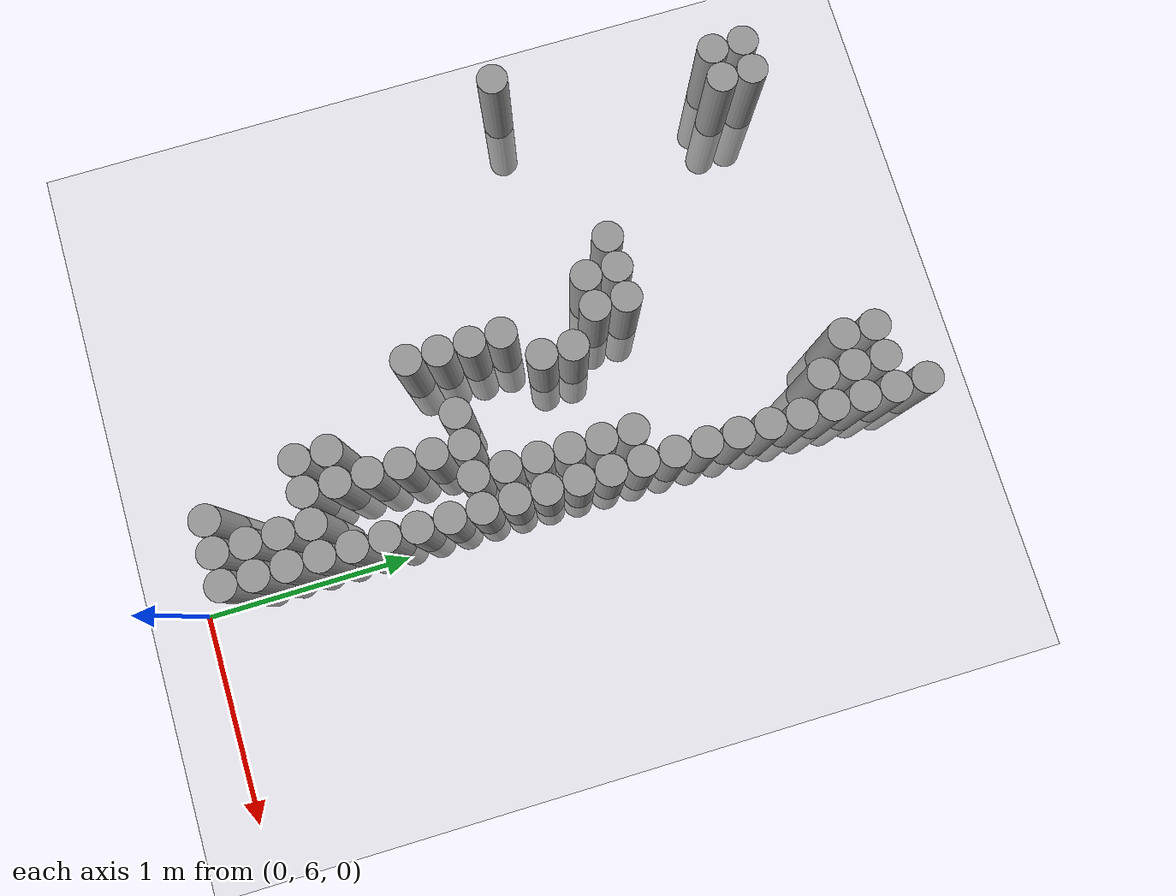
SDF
<sdf version="1.6">
 <world name="default">
  <model name="ground_plane">
   <static>1</static>
   <static>1</static>
   <link name="link">
    <collision name="collision">
     <geometry><plane><normal>0 0 1</normal><size>100 100</size></plane></geometry>
     <surface><friction><ode><mu>100</mu><mu2>50</mu2></ode></friction></surface>
    </collision>
    <visual name="visual">
     <cast_shadows>0</cast_shadows>
     <geometry><plane><normal>0 0 1</normal><size>100 100</size></plane></geometry>
     <material>
      <script><uri>file://media/materials/scripts/gazebo.material</uri><name>Gazebo/Grey</name></script>
     </material>
    </visual>
   </link>
  </model>
  <model name="unit_cylinder_182">
   <static>1</static>
   <pose>-2.025000 8.025000 0.000000 0.000000 0.000000 0.000000</pose>
   <link name="link">
    <inertial>
     <mass>1</mass>
     <inertia><ixx>0.145833</ixx><ixy>0</ixy><ixz>0</ixz><iyy>0.145833</iyy><iyz>0</iyz><izz>0.125</izz></inertia>
    </inertial>
    <collision name="collision">
     <geometry><cylinder><radius>0.075000</radius><length>1</length></cylinder></geometry>
    </collision>
    <visual name="visual">
     <geometry><cylinder><radius>0.075000</radius><length>1</length></cylinder></geometry>
     <material>
      <script><name>Gazebo/Grey</name><uri>file://media/materials/scripts/gazebo.material</uri></script>
     </material>
    </visual>
   </link>
  </model>
  <model name="unit_cylinder_183">
   <static>1</static>
   <pose>-1.875000 9.075000 0.000000 0.000000 0.000000 0.000000</pose>
   <link name="link">
    <inertial>
     <mass>1</mass>
     <inertia><ixx>0.145833</ixx><ixy>0</ixy><ixz>0</ixz><iyy>0.145833</iyy><iyz>0</iyz><izz>0.125</izz></inertia>
    </inertial>
    <collision name="collision">
     <geometry><cylinder><radius>0.075000</radius><length>1</length></cylinder></geometry>
    </collision>
    <visual name="visual">
     <geometry><cylinder><radius>0.075000</radius><length>1</length></cylinder></geometry>
     <material>
      <script><name>Gazebo/Grey</name><uri>file://media/materials/scripts/gazebo.material</uri></script>
     </material>
    </visual>
   </link>
  </model>
  <model name="unit_cylinder_184">
   <static>1</static>
   <pose>-1.875000 9.225000 0.000000 0.000000 0.000000 0.000000</pose>
   <link name="link">
    <inertial>
     <mass>1</mass>
     <inertia><ixx>0.145833</ixx><ixy>0</ixy><ixz>0</ixz><iyy>0.145833</iyy><iyz>0</iyz><izz>0.125</izz></inertia>
    </inertial>
    <collision name="collision">
     <geometry><cylinder><radius>0.075000</radius><length>1</length></cylinder></geometry>
    </collision>
    <visual name="visual">
     <geometry><cylinder><radius>0.075000</radius><length>1</length></cylinder></geometry>
     <material>
      <script><name>Gazebo/Grey</name><uri>file://media/materials/scripts/gazebo.material</uri></script>
     </material>
    </visual>
   </link>
  </model>
  <model name="unit_cylinder_185">
   <static>1</static>
   <pose>-1.725000 9.075000 0.000000 0.000000 0.000000 0.000000</pose>
   <link name="link">
    <inertial>
     <mass>1</mass>
     <inertia><ixx>0.145833</ixx><ixy>0</ixy><ixz>0</ixz><iyy>0.145833</iyy><iyz>0</iyz><izz>0.125</izz></inertia>
    </inertial>
    <collision name="collision">
     <geometry><cylinder><radius>0.075000</radius><length>1</length></cylinder></geometry>
    </collision>
    <visual name="visual">
     <geometry><cylinder><radius>0.075000</radius><length>1</length></cylinder></geometry>
     <material>
      <script><name>Gazebo/Grey</name><uri>file://media/materials/scripts/gazebo.material</uri></script>
     </material>
    </visual>
   </link>
  </model>
  <model name="unit_cylinder_186">
   <static>1</static>
   <pose>-1.725000 9.225000 0.000000 0.000000 0.000000 0.000000</pose>
   <link name="link">
    <inertial>
     <mass>1</mass>
     <inertia><ixx>0.145833</ixx><ixy>0</ixy><ixz>0</ixz><iyy>0.145833</iyy><iyz>0</iyz><izz>0.125</izz></inertia>
    </inertial>
    <collision name="collision">
     <geometry><cylinder><radius>0.075000</radius><length>1</length></cylinder></geometry>
    </collision>
    <visual name="visual">
     <geometry><cylinder><radius>0.075000</radius><length>1</length></cylinder></geometry>
     <material>
      <script><name>Gazebo/Grey</name><uri>file://media/materials/scripts/gazebo.material</uri></script>
     </material>
    </visual>
   </link>
  </model>
  <model name="unit_cylinder_188">
   <static>1</static>
   <pose>-1.125000 8.325000 0.000000 0.000000 0.000000 0.000000</pose>
   <link name="link">
    <inertial>
     <mass>1</mass>
     <inertia><ixx>0.145833</ixx><ixy>0</ixy><ixz>0</ixz><iyy>0.145833</iyy><iyz>0</iyz><izz>0.125</izz></inertia>
    </inertial>
    <collision name="collision">
     <geometry><cylinder><radius>0.075000</radius><length>1</length></cylinder></geometry>
    </collision>
    <visual name="visual">
     <geometry><cylinder><radius>0.075000</radius><length>1</length></cylinder></geometry>
     <material>
      <script><name>Gazebo/Grey</name><uri>file://media/materials/scripts/gazebo.material</uri></script>
     </material>
    </visual>
   </link>
  </model>
  <model name="unit_cylinder_189">
   <static>1</static>
   <pose>-0.975000 8.175000 0.000000 0.000000 0.000000 0.000000</pose>
   <link name="link">
    <inertial>
     <mass>1</mass>
     <inertia><ixx>0.145833</ixx><ixy>0</ixy><ixz>0</ixz><iyy>0.145833</iyy><iyz>0</iyz><izz>0.125</izz></inertia>
    </inertial>
    <collision name="collision">
     <geometry><cylinder><radius>0.075000</radius><length>1</length></cylinder></geometry>
    </collision>
    <visual name="visual">
     <geometry><cylinder><radius>0.075000</radius><length>1</length></cylinder></geometry>
     <material>
      <script><name>Gazebo/Grey</name><uri>file://media/materials/scripts/gazebo.material</uri></script>
     </material>
    </visual>
   </link>
  </model>
  <model name="unit_cylinder_190">
   <static>1</static>
   <pose>-0.975000 8.325000 0.000000 0.000000 0.000000 0.000000</pose>
   <link name="link">
    <inertial>
     <mass>1</mass>
     <inertia><ixx>0.145833</ixx><ixy>0</ixy><ixz>0</ixz><iyy>0.145833</iyy><iyz>0</iyz><izz>0.125</izz></inertia>
    </inertial>
    <collision name="collision">
     <geometry><cylinder><radius>0.075000</radius><length>1</length></cylinder></geometry>
    </collision>
    <visual name="visual">
     <geometry><cylinder><radius>0.075000</radius><length>1</length></cylinder></geometry>
     <material>
      <script><name>Gazebo/Grey</name><uri>file://media/materials/scripts/gazebo.material</uri></script>
     </material>
    </visual>
   </link>
  </model>
  <model name="unit_cylinder_191">
   <static>1</static>
   <pose>-0.825000 7.275000 0.000000 0.000000 0.000000 0.000000</pose>
   <link name="link">
    <inertial>
     <mass>1</mass>
     <inertia><ixx>0.145833</ixx><ixy>0</ixy><ixz>0</ixz><iyy>0.145833</iyy><iyz>0</iyz><izz>0.125</izz></inertia>
    </inertial>
    <collision name="collision">
     <geometry><cylinder><radius>0.075000</radius><length>1</length></cylinder></geometry>
    </collision>
    <visual name="visual">
     <geometry><cylinder><radius>0.075000</radius><length>1</length></cylinder></geometry>
     <material>
      <script><name>Gazebo/Grey</name><uri>file://media/materials/scripts/gazebo.material</uri></script>
     </material>
    </visual>
   </link>
  </model>
  <model name="unit_cylinder_192">
   <static>1</static>
   <pose>-0.825000 7.425000 0.000000 0.000000 0.000000 0.000000</pose>
   <link name="link">
    <inertial>
     <mass>1</mass>
     <inertia><ixx>0.145833</ixx><ixy>0</ixy><ixz>0</ixz><iyy>0.145833</iyy><iyz>0</iyz><izz>0.125</izz></inertia>
    </inertial>
    <collision name="collision">
     <geometry><cylinder><radius>0.075000</radius><length>1</length></cylinder></geometry>
    </collision>
    <visual name="visual">
     <geometry><cylinder><radius>0.075000</radius><length>1</length></cylinder></geometry>
     <material>
      <script><name>Gazebo/Grey</name><uri>file://media/materials/scripts/gazebo.material</uri></script>
     </material>
    </visual>
   </link>
  </model>
  <model name="unit_cylinder_193">
   <static>1</static>
   <pose>-0.825000 7.575000 0.000000 0.000000 0.000000 0.000000</pose>
   <link name="link">
    <inertial>
     <mass>1</mass>
     <inertia><ixx>0.145833</ixx><ixy>0</ixy><ixz>0</ixz><iyy>0.145833</iyy><iyz>0</iyz><izz>0.125</izz></inertia>
    </inertial>
    <collision name="collision">
     <geometry><cylinder><radius>0.075000</radius><length>1</length></cylinder></geometry>
    </collision>
    <visual name="visual">
     <geometry><cylinder><radius>0.075000</radius><length>1</length></cylinder></geometry>
     <material>
      <script><name>Gazebo/Grey</name><uri>file://media/materials/scripts/gazebo.material</uri></script>
     </material>
    </visual>
   </link>
  </model>
  <model name="unit_cylinder_194">
   <static>1</static>
   <pose>-0.825000 7.725000 0.000000 0.000000 0.000000 0.000000</pose>
   <link name="link">
    <inertial>
     <mass>1</mass>
     <inertia><ixx>0.145833</ixx><ixy>0</ixy><ixz>0</ixz><iyy>0.145833</iyy><iyz>0</iyz><izz>0.125</izz></inertia>
    </inertial>
    <collision name="collision">
     <geometry><cylinder><radius>0.075000</radius><length>1</length></cylinder></geometry>
    </collision>
    <visual name="visual">
     <geometry><cylinder><radius>0.075000</radius><length>1</length></cylinder></geometry>
     <material>
      <script><name>Gazebo/Grey</name><uri>file://media/materials/scripts/gazebo.material</uri></script>
     </material>
    </visual>
   </link>
  </model>
  <model name="unit_cylinder_195">
   <static>1</static>
   <pose>-0.825000 8.175000 0.000000 0.000000 0.000000 0.000000</pose>
   <link name="link">
    <inertial>
     <mass>1</mass>
     <inertia><ixx>0.145833</ixx><ixy>0</ixy><ixz>0</ixz><iyy>0.145833</iyy><iyz>0</iyz><izz>0.125</izz></inertia>
    </inertial>
    <collision name="collision">
     <geometry><cylinder><radius>0.075000</radius><length>1</length></cylinder></geometry>
    </collision>
    <visual name="visual">
     <geometry><cylinder><radius>0.075000</radius><length>1</length></cylinder></geometry>
     <material>
      <script><name>Gazebo/Grey</name><uri>file://media/materials/scripts/gazebo.material</uri></script>
     </material>
    </visual>
   </link>
  </model>
  <model name="unit_cylinder_196">
   <static>1</static>
   <pose>-0.825000 8.325000 0.000000 0.000000 0.000000 0.000000</pose>
   <link name="link">
    <inertial>
     <mass>1</mass>
     <inertia><ixx>0.145833</ixx><ixy>0</ixy><ixz>0</ixz><iyy>0.145833</iyy><iyz>0</iyz><izz>0.125</izz></inertia>
    </inertial>
    <collision name="collision">
     <geometry><cylinder><radius>0.075000</radius><length>1</length></cylinder></geometry>
    </collision>
    <visual name="visual">
     <geometry><cylinder><radius>0.075000</radius><length>1</length></cylinder></geometry>
     <material>
      <script><name>Gazebo/Grey</name><uri>file://media/materials/scripts/gazebo.material</uri></script>
     </material>
    </visual>
   </link>
  </model>
  <model name="unit_cylinder_197">
   <static>1</static>
   <pose>-0.675000 7.875000 0.000000 0.000000 0.000000 0.000000</pose>
   <link name="link">
    <inertial>
     <mass>1</mass>
     <inertia><ixx>0.145833</ixx><ixy>0</ixy><ixz>0</ixz><iyy>0.145833</iyy><iyz>0</iyz><izz>0.125</izz></inertia>
    </inertial>
    <collision name="collision">
     <geometry><cylinder><radius>0.075000</radius><length>1</length></cylinder></geometry>
    </collision>
    <visual name="visual">
     <geometry><cylinder><radius>0.075000</radius><length>1</length></cylinder></geometry>
     <material>
      <script><name>Gazebo/Grey</name><uri>file://media/materials/scripts/gazebo.material</uri></script>
     </material>
    </visual>
   </link>
  </model>
  <model name="unit_cylinder_198">
   <static>1</static>
   <pose>-0.675000 8.025000 0.000000 0.000000 0.000000 0.000000</pose>
   <link name="link">
    <inertial>
     <mass>1</mass>
     <inertia><ixx>0.145833</ixx><ixy>0</ixy><ixz>0</ixz><iyy>0.145833</iyy><iyz>0</iyz><izz>0.125</izz></inertia>
    </inertial>
    <collision name="collision">
     <geometry><cylinder><radius>0.075000</radius><length>1</length></cylinder></geometry>
    </collision>
    <visual name="visual">
     <geometry><cylinder><radius>0.075000</radius><length>1</length></cylinder></geometry>
     <material>
      <script><name>Gazebo/Grey</name><uri>file://media/materials/scripts/gazebo.material</uri></script>
     </material>
    </visual>
   </link>
  </model>
  <model name="unit_cylinder_199">
   <static>1</static>
   <pose>-0.525000 6.675000 0.000000 0.000000 0.000000 0.000000</pose>
   <link name="link">
    <inertial>
     <mass>1</mass>
     <inertia><ixx>0.145833</ixx><ixy>0</ixy><ixz>0</ixz><iyy>0.145833</iyy><iyz>0</iyz><izz>0.125</izz></inertia>
    </inertial>
    <collision name="collision">
     <geometry><cylinder><radius>0.075000</radius><length>1</length></cylinder></geometry>
    </collision>
    <visual name="visual">
     <geometry><cylinder><radius>0.075000</radius><length>1</length></cylinder></geometry>
     <material>
      <script><name>Gazebo/Grey</name><uri>file://media/materials/scripts/gazebo.material</uri></script>
     </material>
    </visual>
   </link>
  </model>
  <model name="unit_cylinder_200">
   <static>1</static>
   <pose>-0.525000 6.825000 0.000000 0.000000 0.000000 0.000000</pose>
   <link name="link">
    <inertial>
     <mass>1</mass>
     <inertia><ixx>0.145833</ixx><ixy>0</ixy><ixz>0</ixz><iyy>0.145833</iyy><iyz>0</iyz><izz>0.125</izz></inertia>
    </inertial>
    <collision name="collision">
     <geometry><cylinder><radius>0.075000</radius><length>1</length></cylinder></geometry>
    </collision>
    <visual name="visual">
     <geometry><cylinder><radius>0.075000</radius><length>1</length></cylinder></geometry>
     <material>
      <script><name>Gazebo/Grey</name><uri>file://media/materials/scripts/gazebo.material</uri></script>
     </material>
    </visual>
   </link>
  </model>
  <model name="unit_cylinder_201">
   <static>1</static>
   <pose>-0.525000 7.425000 0.000000 0.000000 0.000000 0.000000</pose>
   <link name="link">
    <inertial>
     <mass>1</mass>
     <inertia><ixx>0.145833</ixx><ixy>0</ixy><ixz>0</ixz><iyy>0.145833</iyy><iyz>0</iyz><izz>0.125</izz></inertia>
    </inertial>
    <collision name="collision">
     <geometry><cylinder><radius>0.075000</radius><length>1</length></cylinder></geometry>
    </collision>
    <visual name="visual">
     <geometry><cylinder><radius>0.075000</radius><length>1</length></cylinder></geometry>
     <material>
      <script><name>Gazebo/Grey</name><uri>file://media/materials/scripts/gazebo.material</uri></script>
     </material>
    </visual>
   </link>
  </model>
  <model name="unit_cylinder_202">
   <static>1</static>
   <pose>-0.375000 6.225000 0.000000 0.000000 0.000000 0.000000</pose>
   <link name="link">
    <inertial>
     <mass>1</mass>
     <inertia><ixx>0.145833</ixx><ixy>0</ixy><ixz>0</ixz><iyy>0.145833</iyy><iyz>0</iyz><izz>0.125</izz></inertia>
    </inertial>
    <collision name="collision">
     <geometry><cylinder><radius>0.075000</radius><length>1</length></cylinder></geometry>
    </collision>
    <visual name="visual">
     <geometry><cylinder><radius>0.075000</radius><length>1</length></cylinder></geometry>
     <material>
      <script><name>Gazebo/Grey</name><uri>file://media/materials/scripts/gazebo.material</uri></script>
     </material>
    </visual>
   </link>
  </model>
  <model name="unit_cylinder_203">
   <static>1</static>
   <pose>-0.375000 6.675000 0.000000 0.000000 0.000000 0.000000</pose>
   <link name="link">
    <inertial>
     <mass>1</mass>
     <inertia><ixx>0.145833</ixx><ixy>0</ixy><ixz>0</ixz><iyy>0.145833</iyy><iyz>0</iyz><izz>0.125</izz></inertia>
    </inertial>
    <collision name="collision">
     <geometry><cylinder><radius>0.075000</radius><length>1</length></cylinder></geometry>
    </collision>
    <visual name="visual">
     <geometry><cylinder><radius>0.075000</radius><length>1</length></cylinder></geometry>
     <material>
      <script><name>Gazebo/Grey</name><uri>file://media/materials/scripts/gazebo.material</uri></script>
     </material>
    </visual>
   </link>
  </model>
  <model name="unit_cylinder_204">
   <static>1</static>
   <pose>-0.375000 6.825000 0.000000 0.000000 0.000000 0.000000</pose>
   <link name="link">
    <inertial>
     <mass>1</mass>
     <inertia><ixx>0.145833</ixx><ixy>0</ixy><ixz>0</ixz><iyy>0.145833</iyy><iyz>0</iyz><izz>0.125</izz></inertia>
    </inertial>
    <collision name="collision">
     <geometry><cylinder><radius>0.075000</radius><length>1</length></cylinder></geometry>
    </collision>
    <visual name="visual">
     <geometry><cylinder><radius>0.075000</radius><length>1</length></cylinder></geometry>
     <material>
      <script><name>Gazebo/Grey</name><uri>file://media/materials/scripts/gazebo.material</uri></script>
     </material>
    </visual>
   </link>
  </model>
  <model name="unit_cylinder_205">
   <static>1</static>
   <pose>-0.375000 6.975000 0.000000 0.000000 0.000000 0.000000</pose>
   <link name="link">
    <inertial>
     <mass>1</mass>
     <inertia><ixx>0.145833</ixx><ixy>0</ixy><ixz>0</ixz><iyy>0.145833</iyy><iyz>0</iyz><izz>0.125</izz></inertia>
    </inertial>
    <collision name="collision">
     <geometry><cylinder><radius>0.075000</radius><length>1</length></cylinder></geometry>
    </collision>
    <visual name="visual">
     <geometry><cylinder><radius>0.075000</radius><length>1</length></cylinder></geometry>
     <material>
      <script><name>Gazebo/Grey</name><uri>file://media/materials/scripts/gazebo.material</uri></script>
     </material>
    </visual>
   </link>
  </model>
  <model name="unit_cylinder_206">
   <static>1</static>
   <pose>-0.375000 7.125000 0.000000 0.000000 0.000000 0.000000</pose>
   <link name="link">
    <inertial>
     <mass>1</mass>
     <inertia><ixx>0.145833</ixx><ixy>0</ixy><ixz>0</ixz><iyy>0.145833</iyy><iyz>0</iyz><izz>0.125</izz></inertia>
    </inertial>
    <collision name="collision">
     <geometry><cylinder><radius>0.075000</radius><length>1</length></cylinder></geometry>
    </collision>
    <visual name="visual">
     <geometry><cylinder><radius>0.075000</radius><length>1</length></cylinder></geometry>
     <material>
      <script><name>Gazebo/Grey</name><uri>file://media/materials/scripts/gazebo.material</uri></script>
     </material>
    </visual>
   </link>
  </model>
  <model name="unit_cylinder_207">
   <static>1</static>
   <pose>-0.375000 7.275000 0.000000 0.000000 0.000000 0.000000</pose>
   <link name="link">
    <inertial>
     <mass>1</mass>
     <inertia><ixx>0.145833</ixx><ixy>0</ixy><ixz>0</ixz><iyy>0.145833</iyy><iyz>0</iyz><izz>0.125</izz></inertia>
    </inertial>
    <collision name="collision">
     <geometry><cylinder><radius>0.075000</radius><length>1</length></cylinder></geometry>
    </collision>
    <visual name="visual">
     <geometry><cylinder><radius>0.075000</radius><length>1</length></cylinder></geometry>
     <material>
      <script><name>Gazebo/Grey</name><uri>file://media/materials/scripts/gazebo.material</uri></script>
     </material>
    </visual>
   </link>
  </model>
  <model name="unit_cylinder_208">
   <static>1</static>
   <pose>-0.375000 7.425000 0.000000 0.000000 0.000000 0.000000</pose>
   <link name="link">
    <inertial>
     <mass>1</mass>
     <inertia><ixx>0.145833</ixx><ixy>0</ixy><ixz>0</ixz><iyy>0.145833</iyy><iyz>0</iyz><izz>0.125</izz></inertia>
    </inertial>
    <collision name="collision">
     <geometry><cylinder><radius>0.075000</radius><length>1</length></cylinder></geometry>
    </collision>
    <visual name="visual">
     <geometry><cylinder><radius>0.075000</radius><length>1</length></cylinder></geometry>
     <material>
      <script><name>Gazebo/Grey</name><uri>file://media/materials/scripts/gazebo.material</uri></script>
     </material>
    </visual>
   </link>
  </model>
  <model name="unit_cylinder_209">
   <static>1</static>
   <pose>-0.375000 9.225000 0.000000 0.000000 0.000000 0.000000</pose>
   <link name="link">
    <inertial>
     <mass>1</mass>
     <inertia><ixx>0.145833</ixx><ixy>0</ixy><ixz>0</ixz><iyy>0.145833</iyy><iyz>0</iyz><izz>0.125</izz></inertia>
    </inertial>
    <collision name="collision">
     <geometry><cylinder><radius>0.075000</radius><length>1</length></cylinder></geometry>
    </collision>
    <visual name="visual">
     <geometry><cylinder><radius>0.075000</radius><length>1</length></cylinder></geometry>
     <material>
      <script><name>Gazebo/Grey</name><uri>file://media/materials/scripts/gazebo.material</uri></script>
     </material>
    </visual>
   </link>
  </model>
  <model name="unit_cylinder_210">
   <static>1</static>
   <pose>-0.375000 9.375000 0.000000 0.000000 0.000000 0.000000</pose>
   <link name="link">
    <inertial>
     <mass>1</mass>
     <inertia><ixx>0.145833</ixx><ixy>0</ixy><ixz>0</ixz><iyy>0.145833</iyy><iyz>0</iyz><izz>0.125</izz></inertia>
    </inertial>
    <collision name="collision">
     <geometry><cylinder><radius>0.075000</radius><length>1</length></cylinder></geometry>
    </collision>
    <visual name="visual">
     <geometry><cylinder><radius>0.075000</radius><length>1</length></cylinder></geometry>
     <material>
      <script><name>Gazebo/Grey</name><uri>file://media/materials/scripts/gazebo.material</uri></script>
     </material>
    </visual>
   </link>
  </model>
  <model name="unit_cylinder_213">
   <static>1</static>
   <pose>-0.225000 6.225000 0.000000 0.000000 0.000000 0.000000</pose>
   <link name="link">
    <inertial>
     <mass>1</mass>
     <inertia><ixx>0.145833</ixx><ixy>0</ixy><ixz>0</ixz><iyy>0.145833</iyy><iyz>0</iyz><izz>0.125</izz></inertia>
    </inertial>
    <collision name="collision">
     <geometry><cylinder><radius>0.075000</radius><length>1</length></cylinder></geometry>
    </collision>
    <visual name="visual">
     <geometry><cylinder><radius>0.075000</radius><length>1</length></cylinder></geometry>
     <material>
      <script><name>Gazebo/Grey</name><uri>file://media/materials/scripts/gazebo.material</uri></script>
     </material>
    </visual>
   </link>
  </model>
  <model name="unit_cylinder_214">
   <static>1</static>
   <pose>-0.225000 6.375000 0.000000 0.000000 0.000000 0.000000</pose>
   <link name="link">
    <inertial>
     <mass>1</mass>
     <inertia><ixx>0.145833</ixx><ixy>0</ixy><ixz>0</ixz><iyy>0.145833</iyy><iyz>0</iyz><izz>0.125</izz></inertia>
    </inertial>
    <collision name="collision">
     <geometry><cylinder><radius>0.075000</radius><length>1</length></cylinder></geometry>
    </collision>
    <visual name="visual">
     <geometry><cylinder><radius>0.075000</radius><length>1</length></cylinder></geometry>
     <material>
      <script><name>Gazebo/Grey</name><uri>file://media/materials/scripts/gazebo.material</uri></script>
     </material>
    </visual>
   </link>
  </model>
  <model name="unit_cylinder_215">
   <static>1</static>
   <pose>-0.225000 6.525000 0.000000 0.000000 0.000000 0.000000</pose>
   <link name="link">
    <inertial>
     <mass>1</mass>
     <inertia><ixx>0.145833</ixx><ixy>0</ixy><ixz>0</ixz><iyy>0.145833</iyy><iyz>0</iyz><izz>0.125</izz></inertia>
    </inertial>
    <collision name="collision">
     <geometry><cylinder><radius>0.075000</radius><length>1</length></cylinder></geometry>
    </collision>
    <visual name="visual">
     <geometry><cylinder><radius>0.075000</radius><length>1</length></cylinder></geometry>
     <material>
      <script><name>Gazebo/Grey</name><uri>file://media/materials/scripts/gazebo.material</uri></script>
     </material>
    </visual>
   </link>
  </model>
  <model name="unit_cylinder_216">
   <static>1</static>
   <pose>-0.225000 6.675000 0.000000 0.000000 0.000000 0.000000</pose>
   <link name="link">
    <inertial>
     <mass>1</mass>
     <inertia><ixx>0.145833</ixx><ixy>0</ixy><ixz>0</ixz><iyy>0.145833</iyy><iyz>0</iyz><izz>0.125</izz></inertia>
    </inertial>
    <collision name="collision">
     <geometry><cylinder><radius>0.075000</radius><length>1</length></cylinder></geometry>
    </collision>
    <visual name="visual">
     <geometry><cylinder><radius>0.075000</radius><length>1</length></cylinder></geometry>
     <material>
      <script><name>Gazebo/Grey</name><uri>file://media/materials/scripts/gazebo.material</uri></script>
     </material>
    </visual>
   </link>
  </model>
  <model name="unit_cylinder_217">
   <static>1</static>
   <pose>-0.225000 7.425000 0.000000 0.000000 0.000000 0.000000</pose>
   <link name="link">
    <inertial>
     <mass>1</mass>
     <inertia><ixx>0.145833</ixx><ixy>0</ixy><ixz>0</ixz><iyy>0.145833</iyy><iyz>0</iyz><izz>0.125</izz></inertia>
    </inertial>
    <collision name="collision">
     <geometry><cylinder><radius>0.075000</radius><length>1</length></cylinder></geometry>
    </collision>
    <visual name="visual">
     <geometry><cylinder><radius>0.075000</radius><length>1</length></cylinder></geometry>
     <material>
      <script><name>Gazebo/Grey</name><uri>file://media/materials/scripts/gazebo.material</uri></script>
     </material>
    </visual>
   </link>
  </model>
  <model name="unit_cylinder_218">
   <static>1</static>
   <pose>-0.225000 7.575000 0.000000 0.000000 0.000000 0.000000</pose>
   <link name="link">
    <inertial>
     <mass>1</mass>
     <inertia><ixx>0.145833</ixx><ixy>0</ixy><ixz>0</ixz><iyy>0.145833</iyy><iyz>0</iyz><izz>0.125</izz></inertia>
    </inertial>
    <collision name="collision">
     <geometry><cylinder><radius>0.075000</radius><length>1</length></cylinder></geometry>
    </collision>
    <visual name="visual">
     <geometry><cylinder><radius>0.075000</radius><length>1</length></cylinder></geometry>
     <material>
      <script><name>Gazebo/Grey</name><uri>file://media/materials/scripts/gazebo.material</uri></script>
     </material>
    </visual>
   </link>
  </model>
  <model name="unit_cylinder_219">
   <static>1</static>
   <pose>-0.225000 7.725000 0.000000 0.000000 0.000000 0.000000</pose>
   <link name="link">
    <inertial>
     <mass>1</mass>
     <inertia><ixx>0.145833</ixx><ixy>0</ixy><ixz>0</ixz><iyy>0.145833</iyy><iyz>0</iyz><izz>0.125</izz></inertia>
    </inertial>
    <collision name="collision">
     <geometry><cylinder><radius>0.075000</radius><length>1</length></cylinder></geometry>
    </collision>
    <visual name="visual">
     <geometry><cylinder><radius>0.075000</radius><length>1</length></cylinder></geometry>
     <material>
      <script><name>Gazebo/Grey</name><uri>file://media/materials/scripts/gazebo.material</uri></script>
     </material>
    </visual>
   </link>
  </model>
  <model name="unit_cylinder_220">
   <static>1</static>
   <pose>-0.225000 7.875000 0.000000 0.000000 0.000000 0.000000</pose>
   <link name="link">
    <inertial>
     <mass>1</mass>
     <inertia><ixx>0.145833</ixx><ixy>0</ixy><ixz>0</ixz><iyy>0.145833</iyy><iyz>0</iyz><izz>0.125</izz></inertia>
    </inertial>
    <collision name="collision">
     <geometry><cylinder><radius>0.075000</radius><length>1</length></cylinder></geometry>
    </collision>
    <visual name="visual">
     <geometry><cylinder><radius>0.075000</radius><length>1</length></cylinder></geometry>
     <material>
      <script><name>Gazebo/Grey</name><uri>file://media/materials/scripts/gazebo.material</uri></script>
     </material>
    </visual>
   </link>
  </model>
  <model name="unit_cylinder_221">
   <static>1</static>
   <pose>-0.225000 8.025000 0.000000 0.000000 0.000000 0.000000</pose>
   <link name="link">
    <inertial>
     <mass>1</mass>
     <inertia><ixx>0.145833</ixx><ixy>0</ixy><ixz>0</ixz><iyy>0.145833</iyy><iyz>0</iyz><izz>0.125</izz></inertia>
    </inertial>
    <collision name="collision">
     <geometry><cylinder><radius>0.075000</radius><length>1</length></cylinder></geometry>
    </collision>
    <visual name="visual">
     <geometry><cylinder><radius>0.075000</radius><length>1</length></cylinder></geometry>
     <material>
      <script><name>Gazebo/Grey</name><uri>file://media/materials/scripts/gazebo.material</uri></script>
     </material>
    </visual>
   </link>
  </model>
  <model name="unit_cylinder_222">
   <static>1</static>
   <pose>-0.225000 8.175000 0.000000 0.000000 0.000000 0.000000</pose>
   <link name="link">
    <inertial>
     <mass>1</mass>
     <inertia><ixx>0.145833</ixx><ixy>0</ixy><ixz>0</ixz><iyy>0.145833</iyy><iyz>0</iyz><izz>0.125</izz></inertia>
    </inertial>
    <collision name="collision">
     <geometry><cylinder><radius>0.075000</radius><length>1</length></cylinder></geometry>
    </collision>
    <visual name="visual">
     <geometry><cylinder><radius>0.075000</radius><length>1</length></cylinder></geometry>
     <material>
      <script><name>Gazebo/Grey</name><uri>file://media/materials/scripts/gazebo.material</uri></script>
     </material>
    </visual>
   </link>
  </model>
  <model name="unit_cylinder_223">
   <static>1</static>
   <pose>-0.225000 9.075000 0.000000 0.000000 0.000000 0.000000</pose>
   <link name="link">
    <inertial>
     <mass>1</mass>
     <inertia><ixx>0.145833</ixx><ixy>0</ixy><ixz>0</ixz><iyy>0.145833</iyy><iyz>0</iyz><izz>0.125</izz></inertia>
    </inertial>
    <collision name="collision">
     <geometry><cylinder><radius>0.075000</radius><length>1</length></cylinder></geometry>
    </collision>
    <visual name="visual">
     <geometry><cylinder><radius>0.075000</radius><length>1</length></cylinder></geometry>
     <material>
      <script><name>Gazebo/Grey</name><uri>file://media/materials/scripts/gazebo.material</uri></script>
     </material>
    </visual>
   </link>
  </model>
  <model name="unit_cylinder_224">
   <static>1</static>
   <pose>-0.225000 9.225000 0.000000 0.000000 0.000000 0.000000</pose>
   <link name="link">
    <inertial>
     <mass>1</mass>
     <inertia><ixx>0.145833</ixx><ixy>0</ixy><ixz>0</ixz><iyy>0.145833</iyy><iyz>0</iyz><izz>0.125</izz></inertia>
    </inertial>
    <collision name="collision">
     <geometry><cylinder><radius>0.075000</radius><length>1</length></cylinder></geometry>
    </collision>
    <visual name="visual">
     <geometry><cylinder><radius>0.075000</radius><length>1</length></cylinder></geometry>
     <material>
      <script><name>Gazebo/Grey</name><uri>file://media/materials/scripts/gazebo.material</uri></script>
     </material>
    </visual>
   </link>
  </model>
  <model name="unit_cylinder_225">
   <static>1</static>
   <pose>-0.225000 9.375000 0.000000 0.000000 0.000000 0.000000</pose>
   <link name="link">
    <inertial>
     <mass>1</mass>
     <inertia><ixx>0.145833</ixx><ixy>0</ixy><ixz>0</ixz><iyy>0.145833</iyy><iyz>0</iyz><izz>0.125</izz></inertia>
    </inertial>
    <collision name="collision">
     <geometry><cylinder><radius>0.075000</radius><length>1</length></cylinder></geometry>
    </collision>
    <visual name="visual">
     <geometry><cylinder><radius>0.075000</radius><length>1</length></cylinder></geometry>
     <material>
      <script><name>Gazebo/Grey</name><uri>file://media/materials/scripts/gazebo.material</uri></script>
     </material>
    </visual>
   </link>
  </model>
  <model name="unit_cylinder_233">
   <static>1</static>
   <pose>-0.075000 6.225000 0.000000 0.000000 0.000000 0.000000</pose>
   <link name="link">
    <inertial>
     <mass>1</mass>
     <inertia><ixx>0.145833</ixx><ixy>0</ixy><ixz>0</ixz><iyy>0.145833</iyy><iyz>0</iyz><izz>0.125</izz></inertia>
    </inertial>
    <collision name="collision">
     <geometry><cylinder><radius>0.075000</radius><length>1</length></cylinder></geometry>
    </collision>
    <visual name="visual">
     <geometry><cylinder><radius>0.075000</radius><length>1</length></cylinder></geometry>
     <material>
      <script><name>Gazebo/Grey</name><uri>file://media/materials/scripts/gazebo.material</uri></script>
     </material>
    </visual>
   </link>
  </model>
  <model name="unit_cylinder_234">
   <static>1</static>
   <pose>-0.075000 6.375000 0.000000 0.000000 0.000000 0.000000</pose>
   <link name="link">
    <inertial>
     <mass>1</mass>
     <inertia><ixx>0.145833</ixx><ixy>0</ixy><ixz>0</ixz><iyy>0.145833</iyy><iyz>0</iyz><izz>0.125</izz></inertia>
    </inertial>
    <collision name="collision">
     <geometry><cylinder><radius>0.075000</radius><length>1</length></cylinder></geometry>
    </collision>
    <visual name="visual">
     <geometry><cylinder><radius>0.075000</radius><length>1</length></cylinder></geometry>
     <material>
      <script><name>Gazebo/Grey</name><uri>file://media/materials/scripts/gazebo.material</uri></script>
     </material>
    </visual>
   </link>
  </model>
  <model name="unit_cylinder_235">
   <static>1</static>
   <pose>-0.075000 6.525000 0.000000 0.000000 0.000000 0.000000</pose>
   <link name="link">
    <inertial>
     <mass>1</mass>
     <inertia><ixx>0.145833</ixx><ixy>0</ixy><ixz>0</ixz><iyy>0.145833</iyy><iyz>0</iyz><izz>0.125</izz></inertia>
    </inertial>
    <collision name="collision">
     <geometry><cylinder><radius>0.075000</radius><length>1</length></cylinder></geometry>
    </collision>
    <visual name="visual">
     <geometry><cylinder><radius>0.075000</radius><length>1</length></cylinder></geometry>
     <material>
      <script><name>Gazebo/Grey</name><uri>file://media/materials/scripts/gazebo.material</uri></script>
     </material>
    </visual>
   </link>
  </model>
  <model name="unit_cylinder_236">
   <static>1</static>
   <pose>-0.075000 6.675000 0.000000 0.000000 0.000000 0.000000</pose>
   <link name="link">
    <inertial>
     <mass>1</mass>
     <inertia><ixx>0.145833</ixx><ixy>0</ixy><ixz>0</ixz><iyy>0.145833</iyy><iyz>0</iyz><izz>0.125</izz></inertia>
    </inertial>
    <collision name="collision">
     <geometry><cylinder><radius>0.075000</radius><length>1</length></cylinder></geometry>
    </collision>
    <visual name="visual">
     <geometry><cylinder><radius>0.075000</radius><length>1</length></cylinder></geometry>
     <material>
      <script><name>Gazebo/Grey</name><uri>file://media/materials/scripts/gazebo.material</uri></script>
     </material>
    </visual>
   </link>
  </model>
  <model name="unit_cylinder_237">
   <static>1</static>
   <pose>-0.075000 6.825000 0.000000 0.000000 0.000000 0.000000</pose>
   <link name="link">
    <inertial>
     <mass>1</mass>
     <inertia><ixx>0.145833</ixx><ixy>0</ixy><ixz>0</ixz><iyy>0.145833</iyy><iyz>0</iyz><izz>0.125</izz></inertia>
    </inertial>
    <collision name="collision">
     <geometry><cylinder><radius>0.075000</radius><length>1</length></cylinder></geometry>
    </collision>
    <visual name="visual">
     <geometry><cylinder><radius>0.075000</radius><length>1</length></cylinder></geometry>
     <material>
      <script><name>Gazebo/Grey</name><uri>file://media/materials/scripts/gazebo.material</uri></script>
     </material>
    </visual>
   </link>
  </model>
  <model name="unit_cylinder_238">
   <static>1</static>
   <pose>-0.075000 6.975000 0.000000 0.000000 0.000000 0.000000</pose>
   <link name="link">
    <inertial>
     <mass>1</mass>
     <inertia><ixx>0.145833</ixx><ixy>0</ixy><ixz>0</ixz><iyy>0.145833</iyy><iyz>0</iyz><izz>0.125</izz></inertia>
    </inertial>
    <collision name="collision">
     <geometry><cylinder><radius>0.075000</radius><length>1</length></cylinder></geometry>
    </collision>
    <visual name="visual">
     <geometry><cylinder><radius>0.075000</radius><length>1</length></cylinder></geometry>
     <material>
      <script><name>Gazebo/Grey</name><uri>file://media/materials/scripts/gazebo.material</uri></script>
     </material>
    </visual>
   </link>
  </model>
  <model name="unit_cylinder_239">
   <static>1</static>
   <pose>-0.075000 7.125000 0.000000 0.000000 0.000000 0.000000</pose>
   <link name="link">
    <inertial>
     <mass>1</mass>
     <inertia><ixx>0.145833</ixx><ixy>0</ixy><ixz>0</ixz><iyy>0.145833</iyy><iyz>0</iyz><izz>0.125</izz></inertia>
    </inertial>
    <collision name="collision">
     <geometry><cylinder><radius>0.075000</radius><length>1</length></cylinder></geometry>
    </collision>
    <visual name="visual">
     <geometry><cylinder><radius>0.075000</radius><length>1</length></cylinder></geometry>
     <material>
      <script><name>Gazebo/Grey</name><uri>file://media/materials/scripts/gazebo.material</uri></script>
     </material>
    </visual>
   </link>
  </model>
  <model name="unit_cylinder_240">
   <static>1</static>
   <pose>-0.075000 7.275000 0.000000 0.000000 0.000000 0.000000</pose>
   <link name="link">
    <inertial>
     <mass>1</mass>
     <inertia><ixx>0.145833</ixx><ixy>0</ixy><ixz>0</ixz><iyy>0.145833</iyy><iyz>0</iyz><izz>0.125</izz></inertia>
    </inertial>
    <collision name="collision">
     <geometry><cylinder><radius>0.075000</radius><length>1</length></cylinder></geometry>
    </collision>
    <visual name="visual">
     <geometry><cylinder><radius>0.075000</radius><length>1</length></cylinder></geometry>
     <material>
      <script><name>Gazebo/Grey</name><uri>file://media/materials/scripts/gazebo.material</uri></script>
     </material>
    </visual>
   </link>
  </model>
  <model name="unit_cylinder_241">
   <static>1</static>
   <pose>-0.075000 7.425000 0.000000 0.000000 0.000000 0.000000</pose>
   <link name="link">
    <inertial>
     <mass>1</mass>
     <inertia><ixx>0.145833</ixx><ixy>0</ixy><ixz>0</ixz><iyy>0.145833</iyy><iyz>0</iyz><izz>0.125</izz></inertia>
    </inertial>
    <collision name="collision">
     <geometry><cylinder><radius>0.075000</radius><length>1</length></cylinder></geometry>
    </collision>
    <visual name="visual">
     <geometry><cylinder><radius>0.075000</radius><length>1</length></cylinder></geometry>
     <material>
      <script><name>Gazebo/Grey</name><uri>file://media/materials/scripts/gazebo.material</uri></script>
     </material>
    </visual>
   </link>
  </model>
  <model name="unit_cylinder_242">
   <static>1</static>
   <pose>-0.075000 7.575000 0.000000 0.000000 0.000000 0.000000</pose>
   <link name="link">
    <inertial>
     <mass>1</mass>
     <inertia><ixx>0.145833</ixx><ixy>0</ixy><ixz>0</ixz><iyy>0.145833</iyy><iyz>0</iyz><izz>0.125</izz></inertia>
    </inertial>
    <collision name="collision">
     <geometry><cylinder><radius>0.075000</radius><length>1</length></cylinder></geometry>
    </collision>
    <visual name="visual">
     <geometry><cylinder><radius>0.075000</radius><length>1</length></cylinder></geometry>
     <material>
      <script><name>Gazebo/Grey</name><uri>file://media/materials/scripts/gazebo.material</uri></script>
     </material>
    </visual>
   </link>
  </model>
  <model name="unit_cylinder_243">
   <static>1</static>
   <pose>-0.075000 7.725000 0.000000 0.000000 0.000000 0.000000</pose>
   <link name="link">
    <inertial>
     <mass>1</mass>
     <inertia><ixx>0.145833</ixx><ixy>0</ixy><ixz>0</ixz><iyy>0.145833</iyy><iyz>0</iyz><izz>0.125</izz></inertia>
    </inertial>
    <collision name="collision">
     <geometry><cylinder><radius>0.075000</radius><length>1</length></cylinder></geometry>
    </collision>
    <visual name="visual">
     <geometry><cylinder><radius>0.075000</radius><length>1</length></cylinder></geometry>
     <material>
      <script><name>Gazebo/Grey</name><uri>file://media/materials/scripts/gazebo.material</uri></script>
     </material>
    </visual>
   </link>
  </model>
  <model name="unit_cylinder_244">
   <static>1</static>
   <pose>-0.075000 7.875000 0.000000 0.000000 0.000000 0.000000</pose>
   <link name="link">
    <inertial>
     <mass>1</mass>
     <inertia><ixx>0.145833</ixx><ixy>0</ixy><ixz>0</ixz><iyy>0.145833</iyy><iyz>0</iyz><izz>0.125</izz></inertia>
    </inertial>
    <collision name="collision">
     <geometry><cylinder><radius>0.075000</radius><length>1</length></cylinder></geometry>
    </collision>
    <visual name="visual">
     <geometry><cylinder><radius>0.075000</radius><length>1</length></cylinder></geometry>
     <material>
      <script><name>Gazebo/Grey</name><uri>file://media/materials/scripts/gazebo.material</uri></script>
     </material>
    </visual>
   </link>
  </model>
  <model name="unit_cylinder_245">
   <static>1</static>
   <pose>-0.075000 8.025000 0.000000 0.000000 0.000000 0.000000</pose>
   <link name="link">
    <inertial>
     <mass>1</mass>
     <inertia><ixx>0.145833</ixx><ixy>0</ixy><ixz>0</ixz><iyy>0.145833</iyy><iyz>0</iyz><izz>0.125</izz></inertia>
    </inertial>
    <collision name="collision">
     <geometry><cylinder><radius>0.075000</radius><length>1</length></cylinder></geometry>
    </collision>
    <visual name="visual">
     <geometry><cylinder><radius>0.075000</radius><length>1</length></cylinder></geometry>
     <material>
      <script><name>Gazebo/Grey</name><uri>file://media/materials/scripts/gazebo.material</uri></script>
     </material>
    </visual>
   </link>
  </model>
  <model name="unit_cylinder_246">
   <static>1</static>
   <pose>-0.075000 8.175000 0.000000 0.000000 0.000000 0.000000</pose>
   <link name="link">
    <inertial>
     <mass>1</mass>
     <inertia><ixx>0.145833</ixx><ixy>0</ixy><ixz>0</ixz><iyy>0.145833</iyy><iyz>0</iyz><izz>0.125</izz></inertia>
    </inertial>
    <collision name="collision">
     <geometry><cylinder><radius>0.075000</radius><length>1</length></cylinder></geometry>
    </collision>
    <visual name="visual">
     <geometry><cylinder><radius>0.075000</radius><length>1</length></cylinder></geometry>
     <material>
      <script><name>Gazebo/Grey</name><uri>file://media/materials/scripts/gazebo.material</uri></script>
     </material>
    </visual>
   </link>
  </model>
  <model name="unit_cylinder_247">
   <static>1</static>
   <pose>-0.075000 8.325000 0.000000 0.000000 0.000000 0.000000</pose>
   <link name="link">
    <inertial>
     <mass>1</mass>
     <inertia><ixx>0.145833</ixx><ixy>0</ixy><ixz>0</ixz><iyy>0.145833</iyy><iyz>0</iyz><izz>0.125</izz></inertia>
    </inertial>
    <collision name="collision">
     <geometry><cylinder><radius>0.075000</radius><length>1</length></cylinder></geometry>
    </collision>
    <visual name="visual">
     <geometry><cylinder><radius>0.075000</radius><length>1</length></cylinder></geometry>
     <material>
      <script><name>Gazebo/Grey</name><uri>file://media/materials/scripts/gazebo.material</uri></script>
     </material>
    </visual>
   </link>
  </model>
  <model name="unit_cylinder_248">
   <static>1</static>
   <pose>-0.075000 8.475000 0.000000 0.000000 0.000000 0.000000</pose>
   <link name="link">
    <inertial>
     <mass>1</mass>
     <inertia><ixx>0.145833</ixx><ixy>0</ixy><ixz>0</ixz><iyy>0.145833</iyy><iyz>0</iyz><izz>0.125</izz></inertia>
    </inertial>
    <collision name="collision">
     <geometry><cylinder><radius>0.075000</radius><length>1</length></cylinder></geometry>
    </collision>
    <visual name="visual">
     <geometry><cylinder><radius>0.075000</radius><length>1</length></cylinder></geometry>
     <material>
      <script><name>Gazebo/Grey</name><uri>file://media/materials/scripts/gazebo.material</uri></script>
     </material>
    </visual>
   </link>
  </model>
  <model name="unit_cylinder_249">
   <static>1</static>
   <pose>-0.075000 8.625000 0.000000 0.000000 0.000000 0.000000</pose>
   <link name="link">
    <inertial>
     <mass>1</mass>
     <inertia><ixx>0.145833</ixx><ixy>0</ixy><ixz>0</ixz><iyy>0.145833</iyy><iyz>0</iyz><izz>0.125</izz></inertia>
    </inertial>
    <collision name="collision">
     <geometry><cylinder><radius>0.075000</radius><length>1</length></cylinder></geometry>
    </collision>
    <visual name="visual">
     <geometry><cylinder><radius>0.075000</radius><length>1</length></cylinder></geometry>
     <material>
      <script><name>Gazebo/Grey</name><uri>file://media/materials/scripts/gazebo.material</uri></script>
     </material>
    </visual>
   </link>
  </model>
  <model name="unit_cylinder_250">
   <static>1</static>
   <pose>-0.075000 8.775000 0.000000 0.000000 0.000000 0.000000</pose>
   <link name="link">
    <inertial>
     <mass>1</mass>
     <inertia><ixx>0.145833</ixx><ixy>0</ixy><ixz>0</ixz><iyy>0.145833</iyy><iyz>0</iyz><izz>0.125</izz></inertia>
    </inertial>
    <collision name="collision">
     <geometry><cylinder><radius>0.075000</radius><length>1</length></cylinder></geometry>
    </collision>
    <visual name="visual">
     <geometry><cylinder><radius>0.075000</radius><length>1</length></cylinder></geometry>
     <material>
      <script><name>Gazebo/Grey</name><uri>file://media/materials/scripts/gazebo.material</uri></script>
     </material>
    </visual>
   </link>
  </model>
  <model name="unit_cylinder_251">
   <static>1</static>
   <pose>-0.075000 8.925000 0.000000 0.000000 0.000000 0.000000</pose>
   <link name="link">
    <inertial>
     <mass>1</mass>
     <inertia><ixx>0.145833</ixx><ixy>0</ixy><ixz>0</ixz><iyy>0.145833</iyy><iyz>0</iyz><izz>0.125</izz></inertia>
    </inertial>
    <collision name="collision">
     <geometry><cylinder><radius>0.075000</radius><length>1</length></cylinder></geometry>
    </collision>
    <visual name="visual">
     <geometry><cylinder><radius>0.075000</radius><length>1</length></cylinder></geometry>
     <material>
      <script><name>Gazebo/Grey</name><uri>file://media/materials/scripts/gazebo.material</uri></script>
     </material>
    </visual>
   </link>
  </model>
  <model name="unit_cylinder_252">
   <static>1</static>
   <pose>-0.075000 9.075000 0.000000 0.000000 0.000000 0.000000</pose>
   <link name="link">
    <inertial>
     <mass>1</mass>
     <inertia><ixx>0.145833</ixx><ixy>0</ixy><ixz>0</ixz><iyy>0.145833</iyy><iyz>0</iyz><izz>0.125</izz></inertia>
    </inertial>
    <collision name="collision">
     <geometry><cylinder><radius>0.075000</radius><length>1</length></cylinder></geometry>
    </collision>
    <visual name="visual">
     <geometry><cylinder><radius>0.075000</radius><length>1</length></cylinder></geometry>
     <material>
      <script><name>Gazebo/Grey</name><uri>file://media/materials/scripts/gazebo.material</uri></script>
     </material>
    </visual>
   </link>
  </model>
  <model name="unit_cylinder_253">
   <static>1</static>
   <pose>-0.075000 9.225000 0.000000 0.000000 0.000000 0.000000</pose>
   <link name="link">
    <inertial>
     <mass>1</mass>
     <inertia><ixx>0.145833</ixx><ixy>0</ixy><ixz>0</ixz><iyy>0.145833</iyy><iyz>0</iyz><izz>0.125</izz></inertia>
    </inertial>
    <collision name="collision">
     <geometry><cylinder><radius>0.075000</radius><length>1</length></cylinder></geometry>
    </collision>
    <visual name="visual">
     <geometry><cylinder><radius>0.075000</radius><length>1</length></cylinder></geometry>
     <material>
      <script><name>Gazebo/Grey</name><uri>file://media/materials/scripts/gazebo.material</uri></script>
     </material>
    </visual>
   </link>
  </model>
  <model name="unit_cylinder_254">
   <static>1</static>
   <pose>-0.075000 9.375000 0.000000 0.000000 0.000000 0.000000</pose>
   <link name="link">
    <inertial>
     <mass>1</mass>
     <inertia><ixx>0.145833</ixx><ixy>0</ixy><ixz>0</ixz><iyy>0.145833</iyy><iyz>0</iyz><izz>0.125</izz></inertia>
    </inertial>
    <collision name="collision">
     <geometry><cylinder><radius>0.075000</radius><length>1</length></cylinder></geometry>
    </collision>
    <visual name="visual">
     <geometry><cylinder><radius>0.075000</radius><length>1</length></cylinder></geometry>
     <material>
      <script><name>Gazebo/Grey</name><uri>file://media/materials/scripts/gazebo.material</uri></script>
     </material>
    </visual>
   </link>
  </model>
  <model name="unit_cylinder_255">
   <static>1</static>
   <pose>-0.075000 9.525000 0.000000 0.000000 0.000000 0.000000</pose>
   <link name="link">
    <inertial>
     <mass>1</mass>
     <inertia><ixx>0.145833</ixx><ixy>0</ixy><ixz>0</ixz><iyy>0.145833</iyy><iyz>0</iyz><izz>0.125</izz></inertia>
    </inertial>
    <collision name="collision">
     <geometry><cylinder><radius>0.075000</radius><length>1</length></cylinder></geometry>
    </collision>
    <visual name="visual">
     <geometry><cylinder><radius>0.075000</radius><length>1</length></cylinder></geometry>
     <material>
      <script><name>Gazebo/Grey</name><uri>file://media/materials/scripts/gazebo.material</uri></script>
     </material>
    </visual>
   </link>
  </model>
 </world>
</sdf>
